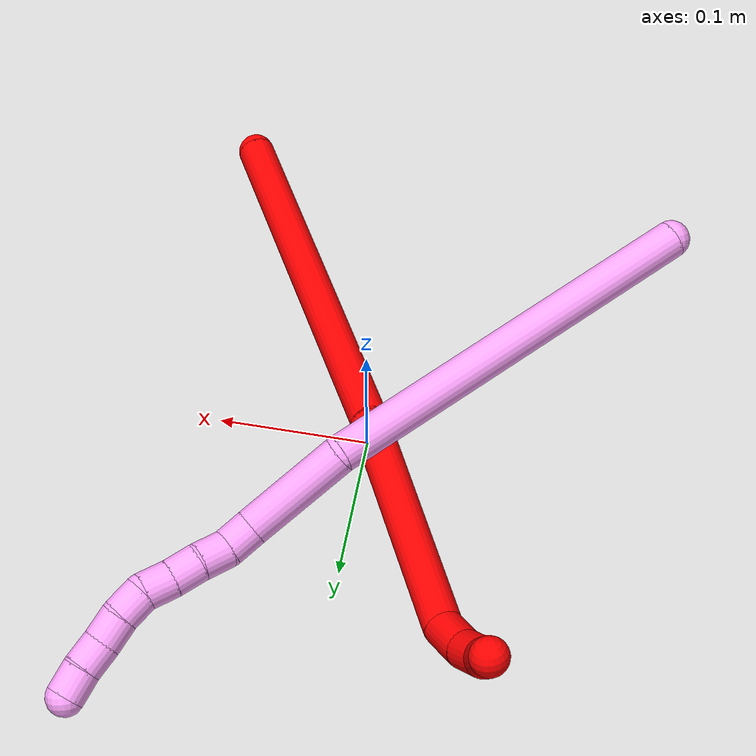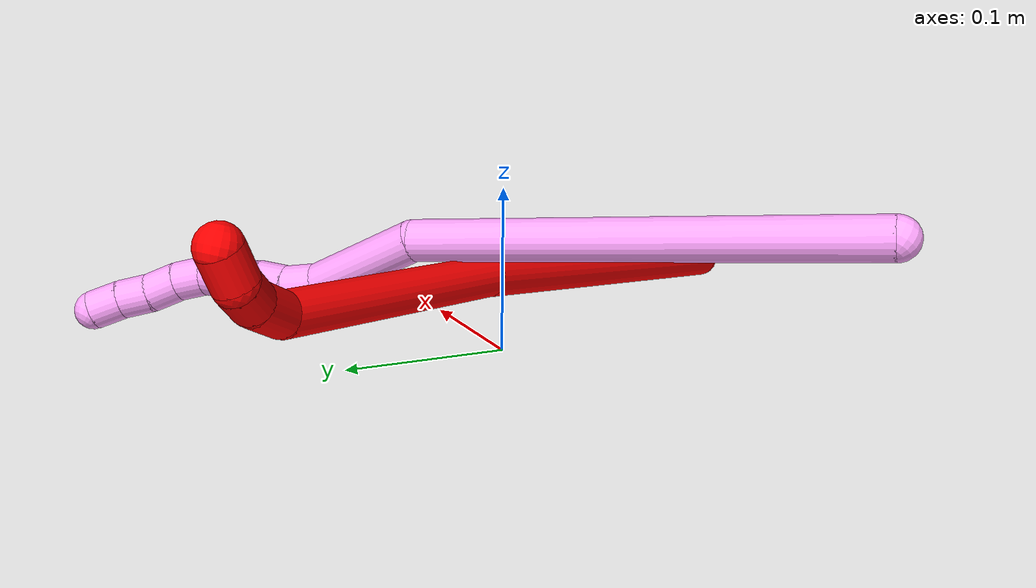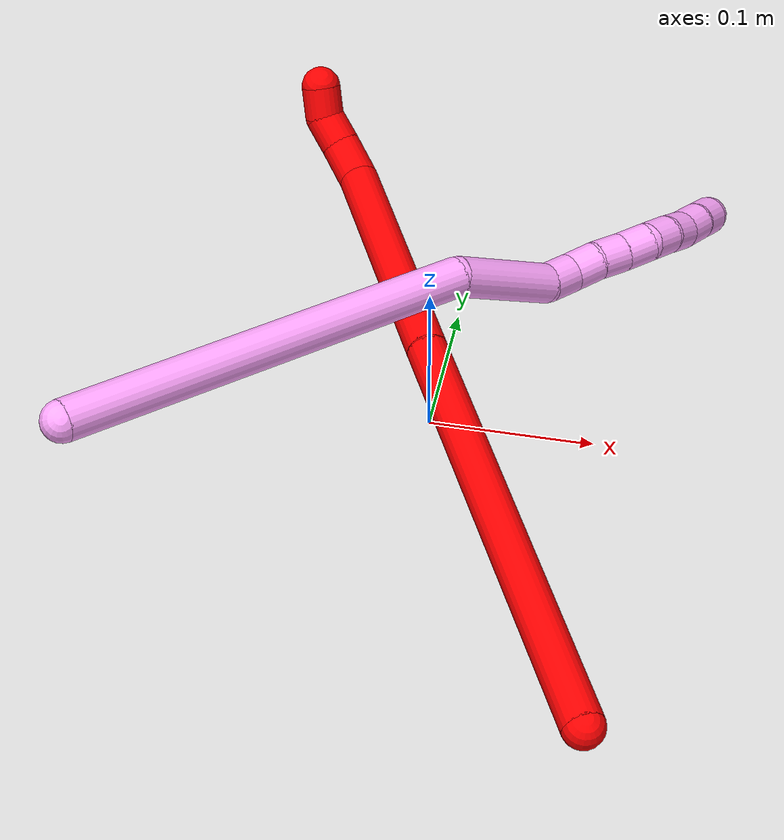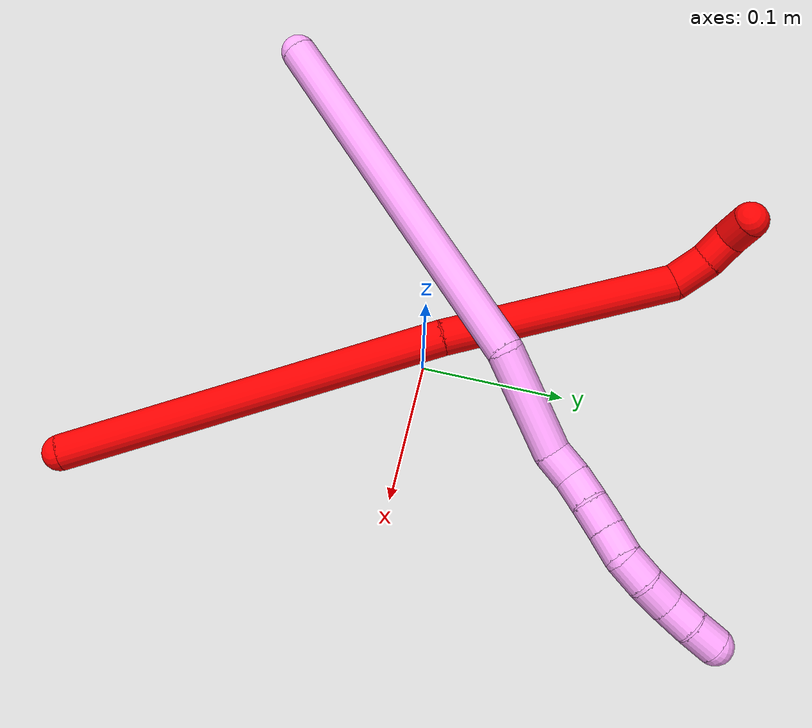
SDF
<sdf version="1.7">
 <world name="default">
  <model name="photoneo_s_sensor">
   <static>1</static>
   <pose>0 0 2 1.57079 1.57079 3.14159</pose>
   <link name="link">
    <inertial><mass>0.1</mass></inertial>
    <sensor name="sensor" type="depth">
     <update_rate>30</update_rate>
     <camera>
      <horizontal_fov>1.22</horizontal_fov>
      <image><width>1920</width><height>1200</height><format>B8G8R8</format></image>
      <clip><near>0.1</near><far>4</far></clip>
      <depth_camera><output>points</output></depth_camera>
     </camera>
     <plugin name="camera_plugin" filename="libgazebo_ros_depth_camera.so">
      <baseline>0.2</baseline>
      <alwaysOn>1</alwaysOn>
      <updateRate>0.0</updateRate>
      <cameraName>camera_ir</cameraName>
      <imageTopicName>/camera/color/image_raw</imageTopicName>
      <cameraInfoTopicName>/camera/color/camera_info</cameraInfoTopicName>
      <depthImageTopicName>/camera/depth/image_raw</depthImageTopicName>
      <depthImageCameraInfoTopicName>/camera/depth/camera_info</depthImageCameraInfoTopicName>
      <pointCloudTopicName>/camera/depth/points</pointCloudTopicName>
      <frameName>fr_optical</frameName>
      <pointCloudCutoff>0.1</pointCloudCutoff>
      <pointCloudCutoffMax>2.0</pointCloudCutoffMax>
      <distortionK1>0</distortionK1>
      <distortionK2>0</distortionK2>
      <distortionK3>0</distortionK3>
      <distortionT1>0</distortionT1>
      <distortionT2>0</distortionT2>
      <CxPrime>0</CxPrime>
      <Cx>0</Cx>
      <Cy>0</Cy>
      <focalLength>0</focalLength>
      <hackBaseline>0</hackBaseline>
     </plugin>
    </sensor>
   </link>
  </model>
  <model name="bin">
   <static>1</static>
   <link name="bottom">
    <collision name="collision-bottom">
     <pose>0 0 -0.01 0 -0 0</pose>
     <geometry><box><size>0.8 0.6 0.02</size></box></geometry>
     <surface>
      <friction><ode><mu>100</mu><mu2>100</mu2></ode></friction>
      <contact><collide_bitmask>65535</collide_bitmask></contact>
     </surface>
    </collision>
   </link>
   <link name="west_wall">
    <collision name="collision-west_wall">
     <pose>-0.41 0 0.1 0 -0 0</pose>
     <geometry><box><size>0.02 0.6 0.2</size></box></geometry>
     <surface>
      <friction><ode><mu>100</mu><mu2>100</mu2></ode></friction>
      <contact><collide_bitmask>65535</collide_bitmask></contact>
     </surface>
    </collision>
   </link>
   <link name="east_wall">
    <collision name="collision-east_wall">
     <pose>0.41 0 0.1 0 -0 0</pose>
     <geometry><box><size>0.02 0.6 0.2</size></box></geometry>
     <surface>
      <friction><ode><mu>100</mu><mu2>100</mu2></ode></friction>
      <contact><collide_bitmask>65535</collide_bitmask></contact>
     </surface>
    </collision>
   </link>
   <link name="south_wall">
    <collision name="collision-south_wall">
     <pose>0 -0.31 0.1 0 -0 0</pose>
     <geometry><box><size>0.8 0.02 0.2</size></box></geometry>
     <surface>
      <friction><ode><mu>100</mu><mu2>100</mu2></ode></friction>
      <contact><collide_bitmask>65535</collide_bitmask></contact>
     </surface>
    </collision>
   </link>
   <link name="north_wall">
    <collision name="collision-north_wall">
     <pose>0 0.31 0.1 0 -0 0</pose>
     <geometry><box><size>0.8 0.02 0.2</size></box></geometry>
     <surface>
      <friction><ode><mu>100</mu><mu2>100</mu2></ode></friction>
      <contact><collide_bitmask>65535</collide_bitmask></contact>
     </surface>
    </collision>
   </link>
  </model>
  <model name="2">
   <static>0</static>
   <link name="2">
    <collision name="collision-cylinder-e_1_1_4">
     <pose>-0.047872 0.123116 -0.027436 -1.79006 -0.362735 0.449756</pose>
     <geometry><cylinder><radius>0.0125</radius><length>0.269829</length></cylinder></geometry>
     <surface>
      <friction><ode><mu>1.16</mu><mu2>1.16</mu2><slip1>0</slip1><slip2>0</slip2></ode></friction>
      <contact><ode><kp>1e+06</kp><kd>1</kd><max_vel>0</max_vel><min_depth>0.001</min_depth></ode></contact>
     </surface>
    </collision>
    <visual name="visual-cylinder-e_1_1_4">
     <pose>-0.047872 0.123116 -0.027436 -1.79006 -0.362735 0.449756</pose>
     <geometry><cylinder><radius>0.0125</radius><length>0.269829</length></cylinder></geometry>
     <material><ambient>1 0 0 1</ambient></material>
    </visual>
    <collision name="collision-cylinder-e_2_4_5">
     <pose>-0.1216 0.319597 -0.077123 -1.86527 -0.325275 0.435453</pose>
     <geometry><cylinder><radius>0.0125</radius><length>0.161817</length></cylinder></geometry>
     <surface>
      <friction><ode><mu>1.16</mu><mu2>1.16</mu2><slip1>0</slip1><slip2>0</slip2></ode></friction>
      <contact><ode><kp>1e+06</kp><kd>1</kd><max_vel>0</max_vel><min_depth>0.001</min_depth></ode></contact>
     </surface>
    </collision>
    <visual name="visual-cylinder-e_2_4_5">
     <pose>-0.1216 0.319597 -0.077123 -1.86527 -0.325275 0.435453</pose>
     <geometry><cylinder><radius>0.0125</radius><length>0.161817</length></cylinder></geometry>
     <material><ambient>1 0 0 1</ambient></material>
    </visual>
    <collision name="collision-cylinder-e_3_5_6">
     <pose>-0.154538 0.404161 -0.097703 -1.42271 -0.558955 0.484971</pose>
     <geometry><cylinder><radius>0.0125</radius><length>0.026708</length></cylinder></geometry>
     <surface>
      <friction><ode><mu>1.16</mu><mu2>1.16</mu2><slip1>0</slip1><slip2>0</slip2></ode></friction>
      <contact><ode><kp>1e+06</kp><kd>1</kd><max_vel>0</max_vel><min_depth>0.001</min_depth></ode></contact>
     </surface>
    </collision>
    <visual name="visual-cylinder-e_3_5_6">
     <pose>-0.154538 0.404161 -0.097703 -1.42271 -0.558955 0.484971</pose>
     <geometry><cylinder><radius>0.0125</radius><length>0.026708</length></cylinder></geometry>
     <material><ambient>1 0 0 1</ambient></material>
    </visual>
    <collision name="collision-cylinder-e_4_6_7">
     <pose>-0.167865 0.423032 -0.092317 -1.11979 -0.63225 0.404442</pose>
     <geometry><cylinder><radius>0.0125</radius><length>0.021138</length></cylinder></geometry>
     <surface>
      <friction><ode><mu>1.16</mu><mu2>1.16</mu2><slip1>0</slip1><slip2>0</slip2></ode></friction>
      <contact><ode><kp>1e+06</kp><kd>1</kd><max_vel>0</max_vel><min_depth>0.001</min_depth></ode></contact>
     </surface>
    </collision>
    <visual name="visual-cylinder-e_4_6_7">
     <pose>-0.167865 0.423032 -0.092317 -1.11979 -0.63225 0.404442</pose>
     <geometry><cylinder><radius>0.0125</radius><length>0.021138</length></cylinder></geometry>
     <material><ambient>1 0 0 1</ambient></material>
    </visual>
    <collision name="collision-cylinder-e_5_7_2">
     <pose>-0.176488 0.437533 -0.081329 -0.753885 -0.233915 0.092958</pose>
     <geometry><cylinder><radius>0.0125</radius><length>0.020508</length></cylinder></geometry>
     <surface>
      <friction><ode><mu>1.16</mu><mu2>1.16</mu2><slip1>0</slip1><slip2>0</slip2></ode></friction>
      <contact><ode><kp>1e+06</kp><kd>1</kd><max_vel>0</max_vel><min_depth>0.001</min_depth></ode></contact>
     </surface>
    </collision>
    <visual name="visual-cylinder-e_5_7_2">
     <pose>-0.176488 0.437533 -0.081329 -0.753885 -0.233915 0.092958</pose>
     <geometry><cylinder><radius>0.0125</radius><length>0.020508</length></cylinder></geometry>
     <material><ambient>1 0 0 1</ambient></material>
    </visual>
    <collision name="collision-sphere-2">
     <pose>-0.178864 0.444361 -0.074057 0 -0 0</pose>
     <geometry><sphere><radius>0.0125</radius></sphere></geometry>
     <surface>
      <friction><ode><mu>1.16</mu><mu2>1.16</mu2><slip1>0</slip1><slip2>0</slip2></ode></friction>
      <contact><ode><kp>1e+06</kp><kd>1</kd><max_vel>0</max_vel><min_depth>0.001</min_depth></ode></contact>
     </surface>
    </collision>
    <visual name="visual-sphere-2">
     <pose>-0.178864 0.444361 -0.074057 0 -0 0</pose>
     <geometry><sphere><radius>0.0125</radius></sphere></geometry>
     <material><ambient>1 0 0 1</ambient></material>
    </visual>
    <collision name="collision-sphere-7">
     <pose>-0.174111 0.430706 -0.088601 0 -0 0</pose>
     <geometry><sphere><radius>0.0125</radius></sphere></geometry>
     <surface>
      <friction><ode><mu>1.16</mu><mu2>1.16</mu2><slip1>0</slip1><slip2>0</slip2></ode></friction>
      <contact><ode><kp>1e+06</kp><kd>1</kd><max_vel>0</max_vel><min_depth>0.001</min_depth></ode></contact>
     </surface>
    </collision>
    <visual name="visual-sphere-7">
     <pose>-0.174111 0.430706 -0.088601 0 -0 0</pose>
     <geometry><sphere><radius>0.0125</radius></sphere></geometry>
     <material><ambient>1 0 0 1</ambient></material>
    </visual>
    <collision name="collision-sphere-6">
     <pose>-0.161619 0.415359 -0.096033 0 -0 0</pose>
     <geometry><sphere><radius>0.0125</radius></sphere></geometry>
     <surface>
      <friction><ode><mu>1.16</mu><mu2>1.16</mu2><slip1>0</slip1><slip2>0</slip2></ode></friction>
      <contact><ode><kp>1e+06</kp><kd>1</kd><max_vel>0</max_vel><min_depth>0.001</min_depth></ode></contact>
     </surface>
    </collision>
    <visual name="visual-sphere-6">
     <pose>-0.161619 0.415359 -0.096033 0 -0 0</pose>
     <geometry><sphere><radius>0.0125</radius></sphere></geometry>
     <material><ambient>1 0 0 1</ambient></material>
    </visual>
    <collision name="collision-sphere-5">
     <pose>-0.147456 0.392963 -0.099374 0 -0 0</pose>
     <geometry><sphere><radius>0.0125</radius></sphere></geometry>
     <surface>
      <friction><ode><mu>1.16</mu><mu2>1.16</mu2><slip1>0</slip1><slip2>0</slip2></ode></friction>
      <contact><ode><kp>1e+06</kp><kd>1</kd><max_vel>0</max_vel><min_depth>0.001</min_depth></ode></contact>
     </surface>
    </collision>
    <visual name="visual-sphere-5">
     <pose>-0.147456 0.392963 -0.099374 0 -0 0</pose>
     <geometry><sphere><radius>0.0125</radius></sphere></geometry>
     <material><ambient>1 0 0 1</ambient></material>
    </visual>
    <collision name="collision-sphere-1">
     <geometry><sphere><radius>0.0125</radius></sphere></geometry>
     <surface>
      <friction><ode><mu>1.16</mu><mu2>1.16</mu2><slip1>0</slip1><slip2>0</slip2></ode></friction>
      <contact><ode><kp>1e+06</kp><kd>1</kd><max_vel>0</max_vel><min_depth>0.001</min_depth></ode></contact>
     </surface>
    </collision>
    <visual name="visual-sphere-1">
     <geometry><sphere><radius>0.0125</radius></sphere></geometry>
     <material><ambient>1 0 0 1</ambient></material>
    </visual>
    <collision name="collision-sphere-4">
     <pose>-0.095744 0.246231 -0.054871 0 -0 0</pose>
     <geometry><sphere><radius>0.0125</radius></sphere></geometry>
     <surface>
      <friction><ode><mu>1.16</mu><mu2>1.16</mu2><slip1>0</slip1><slip2>0</slip2></ode></friction>
      <contact><ode><kp>1e+06</kp><kd>1</kd><max_vel>0</max_vel><min_depth>0.001</min_depth></ode></contact>
     </surface>
    </collision>
    <visual name="visual-sphere-4">
     <pose>-0.095744 0.246231 -0.054871 0 -0 0</pose>
     <geometry><sphere><radius>0.0125</radius></sphere></geometry>
     <material><ambient>1 0 0 1</ambient></material>
    </visual>
    <inertial>
     <pose>-0.087779 0.227291 -0.052223 0 -0 0</pose>
     <mass>0.5</mass>
     <inertia>
      <ixx>0.002502</ixx>
      <ixy>0</ixy>
      <ixz>0</ixz>
      <iyy>0.00073</iyy>
      <iyz>0</iyz>
      <izz>-0.001137</izz>
     </inertia>
    </inertial>
   </link>
   <pose>0.123316 -0.22354 0.011497 0.322839 0.117293 0.144026</pose>
  </model>
  <model name="4">
   <static>0</static>
   <link name="4">
    <collision name="collision-cylinder-e_1_1_4">
     <pose>0.073573 0.1005 0.04626 -1.13941 0.586851 -0.382356</pose>
     <geometry><cylinder><radius>0.0125</radius><length>0.26573</length></cylinder></geometry>
     <surface>
      <friction><ode><mu>1.16</mu><mu2>1.16</mu2><slip1>0</slip1><slip2>0</slip2></ode></friction>
      <contact><ode><kp>1e+06</kp><kd>1</kd><max_vel>0</max_vel><min_depth>0.001</min_depth></ode></contact>
     </surface>
    </collision>
    <visual name="visual-cylinder-e_1_1_4">
     <pose>0.073573 0.1005 0.04626 -1.13941 0.586851 -0.382356</pose>
     <geometry><cylinder><radius>0.0125</radius><length>0.26573</length></cylinder></geometry>
     <material><ambient>1 0.65098 0.996078 1</ambient></material>
    </visual>
    <collision name="collision-cylinder-e_2_4_5">
     <pose>0.155623 0.230227 0.112896 -0.961984 0.233598 -0.122313</pose>
     <geometry><cylinder><radius>0.0125</radius><length>0.073249</length></cylinder></geometry>
     <surface>
      <friction><ode><mu>1.16</mu><mu2>1.16</mu2><slip1>0</slip1><slip2>0</slip2></ode></friction>
      <contact><ode><kp>1e+06</kp><kd>1</kd><max_vel>0</max_vel><min_depth>0.001</min_depth></ode></contact>
     </surface>
    </collision>
    <visual name="visual-cylinder-e_2_4_5">
     <pose>0.155623 0.230227 0.112896 -0.961984 0.233598 -0.122313</pose>
     <geometry><cylinder><radius>0.0125</radius><length>0.073249</length></cylinder></geometry>
     <material><ambient>1 0.65098 0.996078 1</ambient></material>
    </visual>
    <collision name="collision-cylinder-e_3_5_6">
     <pose>0.17006 0.266634 0.138023 -0.986214 0.60551 -0.332612</pose>
     <geometry><cylinder><radius>0.0125</radius><length>0.020939</length></cylinder></geometry>
     <surface>
      <friction><ode><mu>1.16</mu><mu2>1.16</mu2><slip1>0</slip1><slip2>0</slip2></ode></friction>
      <contact><ode><kp>1e+06</kp><kd>1</kd><max_vel>0</max_vel><min_depth>0.001</min_depth></ode></contact>
     </surface>
    </collision>
    <visual name="visual-cylinder-e_3_5_6">
     <pose>0.17006 0.266634 0.138023 -0.986214 0.60551 -0.332612</pose>
     <geometry><cylinder><radius>0.0125</radius><length>0.020939</length></cylinder></geometry>
     <material><ambient>1 0.65098 0.996078 1</ambient></material>
    </visual>
    <collision name="collision-cylinder-e_4_6_7">
     <pose>0.182232 0.281399 0.144736 -1.31754 0.670368 -0.526776</pose>
     <geometry><cylinder><radius>0.0125</radius><length>0.020001</length></cylinder></geometry>
     <surface>
      <friction><ode><mu>1.16</mu><mu2>1.16</mu2><slip1>0</slip1><slip2>0</slip2></ode></friction>
      <contact><ode><kp>1e+06</kp><kd>1</kd><max_vel>0</max_vel><min_depth>0.001</min_depth></ode></contact>
     </surface>
    </collision>
    <visual name="visual-cylinder-e_4_6_7">
     <pose>0.182232 0.281399 0.144736 -1.31754 0.670368 -0.526776</pose>
     <geometry><cylinder><radius>0.0125</radius><length>0.020001</length></cylinder></geometry>
     <material><ambient>1 0.65098 0.996078 1</ambient></material>
    </visual>
    <collision name="collision-cylinder-e_5_7_8">
     <pose>0.193801 0.296825 0.149934 -1.17953 0.563251 -0.382494</pose>
     <geometry><cylinder><radius>0.0125</radius><length>0.020059</length></cylinder></geometry>
     <surface>
      <friction><ode><mu>1.16</mu><mu2>1.16</mu2><slip1>0</slip1><slip2>0</slip2></ode></friction>
      <contact><ode><kp>1e+06</kp><kd>1</kd><max_vel>0</max_vel><min_depth>0.001</min_depth></ode></contact>
     </surface>
    </collision>
    <visual name="visual-cylinder-e_5_7_8">
     <pose>0.193801 0.296825 0.149934 -1.17953 0.563251 -0.382494</pose>
     <geometry><cylinder><radius>0.0125</radius><length>0.020059</length></cylinder></geometry>
     <material><ambient>1 0.65098 0.996078 1</ambient></material>
    </visual>
    <collision name="collision-cylinder-e_6_8_9">
     <pose>0.204954 0.312549 0.15524 -1.31381 0.618231 -0.482934</pose>
     <geometry><cylinder><radius>0.0125</radius><length>0.020008</length></cylinder></geometry>
     <surface>
      <friction><ode><mu>1.16</mu><mu2>1.16</mu2><slip1>0</slip1><slip2>0</slip2></ode></friction>
      <contact><ode><kp>1e+06</kp><kd>1</kd><max_vel>0</max_vel><min_depth>0.001</min_depth></ode></contact>
     </surface>
    </collision>
    <visual name="visual-cylinder-e_6_8_9">
     <pose>0.204954 0.312549 0.15524 -1.31381 0.618231 -0.482934</pose>
     <geometry><cylinder><radius>0.0125</radius><length>0.020008</length></cylinder></geometry>
     <material><ambient>1 0.65098 0.996078 1</ambient></material>
    </visual>
    <collision name="collision-cylinder-e_7_9_10">
     <pose>0.215887 0.326925 0.162932 -0.857271 0.538953 -0.251098</pose>
     <geometry><cylinder><radius>0.0125</radius><length>0.020009</length></cylinder></geometry>
     <surface>
      <friction><ode><mu>1.16</mu><mu2>1.16</mu2><slip1>0</slip1><slip2>0</slip2></ode></friction>
      <contact><ode><kp>1e+06</kp><kd>1</kd><max_vel>0</max_vel><min_depth>0.001</min_depth></ode></contact>
     </surface>
    </collision>
    <visual name="visual-cylinder-e_7_9_10">
     <pose>0.215887 0.326925 0.162932 -0.857271 0.538953 -0.251098</pose>
     <geometry><cylinder><radius>0.0125</radius><length>0.020009</length></cylinder></geometry>
     <material><ambient>1 0.65098 0.996078 1</ambient></material>
    </visual>
    <collision name="collision-cylinder-e_8_10_11">
     <pose>0.225272 0.338999 0.17568 -0.664348 0.438903 -0.153578</pose>
     <geometry><cylinder><radius>0.0125</radius><length>0.020003</length></cylinder></geometry>
     <surface>
      <friction><ode><mu>1.16</mu><mu2>1.16</mu2><slip1>0</slip1><slip2>0</slip2></ode></friction>
      <contact><ode><kp>1e+06</kp><kd>1</kd><max_vel>0</max_vel><min_depth>0.001</min_depth></ode></contact>
     </surface>
    </collision>
    <visual name="visual-cylinder-e_8_10_11">
     <pose>0.225272 0.338999 0.17568 -0.664348 0.438903 -0.153578</pose>
     <geometry><cylinder><radius>0.0125</radius><length>0.020003</length></cylinder></geometry>
     <material><ambient>1 0.65098 0.996078 1</ambient></material>
    </visual>
    <collision name="collision-cylinder-e_9_11_12">
     <pose>0.235088 0.350129 0.188993 -0.731144 0.590242 -0.231686</pose>
     <geometry><cylinder><radius>0.0125</radius><length>0.020001</length></cylinder></geometry>
     <surface>
      <friction><ode><mu>1.16</mu><mu2>1.16</mu2><slip1>0</slip1><slip2>0</slip2></ode></friction>
      <contact><ode><kp>1e+06</kp><kd>1</kd><max_vel>0</max_vel><min_depth>0.001</min_depth></ode></contact>
     </surface>
    </collision>
    <visual name="visual-cylinder-e_9_11_12">
     <pose>0.235088 0.350129 0.188993 -0.731144 0.590242 -0.231686</pose>
     <geometry><cylinder><radius>0.0125</radius><length>0.020001</length></cylinder></geometry>
     <material><ambient>1 0.65098 0.996078 1</ambient></material>
    </visual>
    <collision name="collision-cylinder-e_10_12_2">
     <pose>0.245499 0.360591 0.202415 -0.596561 0.505752 -0.158563</pose>
     <geometry><cylinder><radius>0.0125</radius><length>0.020001</length></cylinder></geometry>
     <surface>
      <friction><ode><mu>1.16</mu><mu2>1.16</mu2><slip1>0</slip1><slip2>0</slip2></ode></friction>
      <contact><ode><kp>1e+06</kp><kd>1</kd><max_vel>0</max_vel><min_depth>0.001</min_depth></ode></contact>
     </surface>
    </collision>
    <visual name="visual-cylinder-e_10_12_2">
     <pose>0.245499 0.360591 0.202415 -0.596561 0.505752 -0.158563</pose>
     <geometry><cylinder><radius>0.0125</radius><length>0.020001</length></cylinder></geometry>
     <material><ambient>1 0.65098 0.996078 1</ambient></material>
    </visual>
    <collision name="collision-sphere-2">
     <pose>0.250343 0.365506 0.209652 0 -0 0</pose>
     <geometry><sphere><radius>0.0125</radius></sphere></geometry>
     <surface>
      <friction><ode><mu>1.16</mu><mu2>1.16</mu2><slip1>0</slip1><slip2>0</slip2></ode></friction>
      <contact><ode><kp>1e+06</kp><kd>1</kd><max_vel>0</max_vel><min_depth>0.001</min_depth></ode></contact>
     </surface>
    </collision>
    <visual name="visual-sphere-2">
     <pose>0.250343 0.365506 0.209652 0 -0 0</pose>
     <geometry><sphere><radius>0.0125</radius></sphere></geometry>
     <material><ambient>1 0.65098 0.996078 1</ambient></material>
    </visual>
    <collision name="collision-sphere-12">
     <pose>0.240654 0.355676 0.195177 0 -0 0</pose>
     <geometry><sphere><radius>0.0125</radius></sphere></geometry>
     <surface>
      <friction><ode><mu>1.16</mu><mu2>1.16</mu2><slip1>0</slip1><slip2>0</slip2></ode></friction>
      <contact><ode><kp>1e+06</kp><kd>1</kd><max_vel>0</max_vel><min_depth>0.001</min_depth></ode></contact>
     </surface>
    </collision>
    <visual name="visual-sphere-12">
     <pose>0.240654 0.355676 0.195177 0 -0 0</pose>
     <geometry><sphere><radius>0.0125</radius></sphere></geometry>
     <material><ambient>1 0.65098 0.996078 1</ambient></material>
    </visual>
    <collision name="collision-sphere-11">
     <pose>0.229522 0.344581 0.182808 0 -0 0</pose>
     <geometry><sphere><radius>0.0125</radius></sphere></geometry>
     <surface>
      <friction><ode><mu>1.16</mu><mu2>1.16</mu2><slip1>0</slip1><slip2>0</slip2></ode></friction>
      <contact><ode><kp>1e+06</kp><kd>1</kd><max_vel>0</max_vel><min_depth>0.001</min_depth></ode></contact>
     </surface>
    </collision>
    <visual name="visual-sphere-11">
     <pose>0.229522 0.344581 0.182808 0 -0 0</pose>
     <geometry><sphere><radius>0.0125</radius></sphere></geometry>
     <material><ambient>1 0.65098 0.996078 1</ambient></material>
    </visual>
    <collision name="collision-sphere-10">
     <pose>0.221022 0.333417 0.168552 0 -0 0</pose>
     <geometry><sphere><radius>0.0125</radius></sphere></geometry>
     <surface>
      <friction><ode><mu>1.16</mu><mu2>1.16</mu2><slip1>0</slip1><slip2>0</slip2></ode></friction>
      <contact><ode><kp>1e+06</kp><kd>1</kd><max_vel>0</max_vel><min_depth>0.001</min_depth></ode></contact>
     </surface>
    </collision>
    <visual name="visual-sphere-10">
     <pose>0.221022 0.333417 0.168552 0 -0 0</pose>
     <geometry><sphere><radius>0.0125</radius></sphere></geometry>
     <material><ambient>1 0.65098 0.996078 1</ambient></material>
    </visual>
    <collision name="collision-sphere-9">
     <pose>0.210752 0.320433 0.157312 0 -0 0</pose>
     <geometry><sphere><radius>0.0125</radius></sphere></geometry>
     <surface>
      <friction><ode><mu>1.16</mu><mu2>1.16</mu2><slip1>0</slip1><slip2>0</slip2></ode></friction>
      <contact><ode><kp>1e+06</kp><kd>1</kd><max_vel>0</max_vel><min_depth>0.001</min_depth></ode></contact>
     </surface>
    </collision>
    <visual name="visual-sphere-9">
     <pose>0.210752 0.320433 0.157312 0 -0 0</pose>
     <geometry><sphere><radius>0.0125</radius></sphere></geometry>
     <material><ambient>1 0.65098 0.996078 1</ambient></material>
    </visual>
    <collision name="collision-sphere-4">
     <pose>0.147146 0.200999 0.092519 0 -0 0</pose>
     <geometry><sphere><radius>0.0125</radius></sphere></geometry>
     <surface>
      <friction><ode><mu>1.16</mu><mu2>1.16</mu2><slip1>0</slip1><slip2>0</slip2></ode></friction>
      <contact><ode><kp>1e+06</kp><kd>1</kd><max_vel>0</max_vel><min_depth>0.001</min_depth></ode></contact>
     </surface>
    </collision>
    <visual name="visual-sphere-4">
     <pose>0.147146 0.200999 0.092519 0 -0 0</pose>
     <geometry><sphere><radius>0.0125</radius></sphere></geometry>
     <material><ambient>1 0.65098 0.996078 1</ambient></material>
    </visual>
    <collision name="collision-sphere-1">
     <geometry><sphere><radius>0.0125</radius></sphere></geometry>
     <surface>
      <friction><ode><mu>1.16</mu><mu2>1.16</mu2><slip1>0</slip1><slip2>0</slip2></ode></friction>
      <contact><ode><kp>1e+06</kp><kd>1</kd><max_vel>0</max_vel><min_depth>0.001</min_depth></ode></contact>
     </surface>
    </collision>
    <visual name="visual-sphere-1">
     <geometry><sphere><radius>0.0125</radius></sphere></geometry>
     <material><ambient>1 0.65098 0.996078 1</ambient></material>
    </visual>
    <collision name="collision-sphere-8">
     <pose>0.199156 0.304664 0.153168 0 -0 0</pose>
     <geometry><sphere><radius>0.0125</radius></sphere></geometry>
     <surface>
      <friction><ode><mu>1.16</mu><mu2>1.16</mu2><slip1>0</slip1><slip2>0</slip2></ode></friction>
      <contact><ode><kp>1e+06</kp><kd>1</kd><max_vel>0</max_vel><min_depth>0.001</min_depth></ode></contact>
     </surface>
    </collision>
    <visual name="visual-sphere-8">
     <pose>0.199156 0.304664 0.153168 0 -0 0</pose>
     <geometry><sphere><radius>0.0125</radius></sphere></geometry>
     <material><ambient>1 0.65098 0.996078 1</ambient></material>
    </visual>
    <collision name="collision-sphere-5">
     <pose>0.164101 0.259456 0.133272 0 -0 0</pose>
     <geometry><sphere><radius>0.0125</radius></sphere></geometry>
     <surface>
      <friction><ode><mu>1.16</mu><mu2>1.16</mu2><slip1>0</slip1><slip2>0</slip2></ode></friction>
      <contact><ode><kp>1e+06</kp><kd>1</kd><max_vel>0</max_vel><min_depth>0.001</min_depth></ode></contact>
     </surface>
    </collision>
    <visual name="visual-sphere-5">
     <pose>0.164101 0.259456 0.133272 0 -0 0</pose>
     <geometry><sphere><radius>0.0125</radius></sphere></geometry>
     <material><ambient>1 0.65098 0.996078 1</ambient></material>
    </visual>
    <collision name="collision-sphere-6">
     <pose>0.176019 0.273813 0.142773 0 -0 0</pose>
     <geometry><sphere><radius>0.0125</radius></sphere></geometry>
     <surface>
      <friction><ode><mu>1.16</mu><mu2>1.16</mu2><slip1>0</slip1><slip2>0</slip2></ode></friction>
      <contact><ode><kp>1e+06</kp><kd>1</kd><max_vel>0</max_vel><min_depth>0.001</min_depth></ode></contact>
     </surface>
    </collision>
    <visual name="visual-sphere-6">
     <pose>0.176019 0.273813 0.142773 0 -0 0</pose>
     <geometry><sphere><radius>0.0125</radius></sphere></geometry>
     <material><ambient>1 0.65098 0.996078 1</ambient></material>
    </visual>
    <collision name="collision-sphere-7">
     <pose>0.188446 0.288986 0.1467 0 -0 0</pose>
     <geometry><sphere><radius>0.0125</radius></sphere></geometry>
     <surface>
      <friction><ode><mu>1.16</mu><mu2>1.16</mu2><slip1>0</slip1><slip2>0</slip2></ode></friction>
      <contact><ode><kp>1e+06</kp><kd>1</kd><max_vel>0</max_vel><min_depth>0.001</min_depth></ode></contact>
     </surface>
    </collision>
    <visual name="visual-sphere-7">
     <pose>0.188446 0.288986 0.1467 0 -0 0</pose>
     <geometry><sphere><radius>0.0125</radius></sphere></geometry>
     <material><ambient>1 0.65098 0.996078 1</ambient></material>
    </visual>
    <inertial>
     <pose>0.129163 0.189052 0.094127 0 -0 0</pose>
     <mass>0.5</mass>
     <inertia>
      <ixx>0.000783</ixx>
      <ixy>0</ixy>
      <ixz>0</ixz>
      <iyy>0.000467</iyy>
      <iyz>0</iyz>
      <izz>-0.002097</izz>
     </inertia>
    </inertial>
   </link>
   <pose>-0.17867 -0.134331 0.093969 -2.85598 -0.672 1.47668</pose>
  </model>
 </world>
</sdf>
